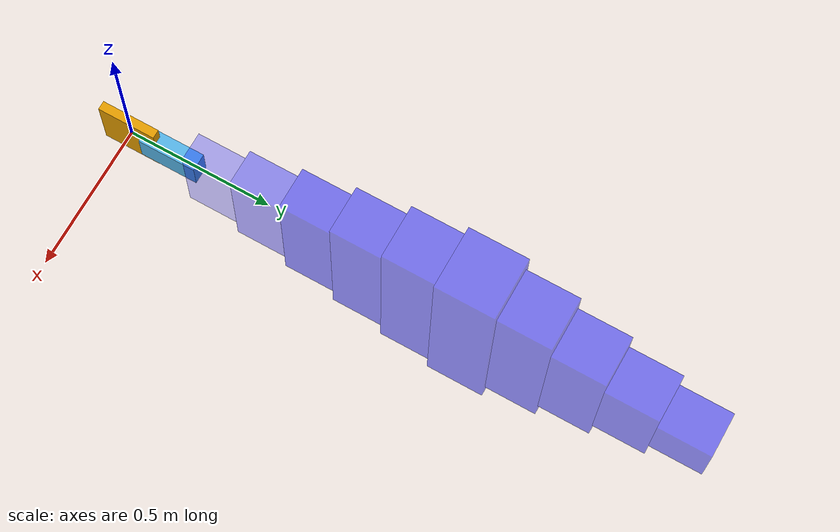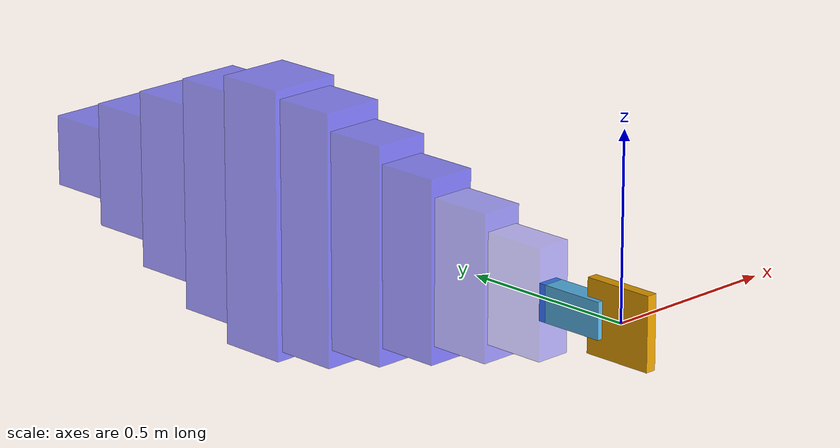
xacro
<robot name="my_robot">

  <!-- the model -->
  <link name="tail">
    <inertial>
      <mass value="0.01" />
      <origin xyz="0 0 0." />
      <inertia ixx="50.0" ixy="0.0" ixz="0.0"
        iyy="50.0" iyz="0.0"
        izz="50.0" />
    </inertial>
    <visual>
      <origin rpy="0 0 0" xyz="0 0 0."/>
      <geometry>
        <box size="0.03 0.2 0.2" />
      </geometry>
    </visual>
    <collision>
      <origin rpy="0 0 0" xyz="0 0 0"/>
      <geometry>
        <box size="0.03 0.2 0.2" />
      </geometry>
    </collision>
  </link>

  <joint name="joint0" type="revolute">
    <axis xyz="0 0 1"/>
    <limit effort="1000.0" lower="-.5" upper=".5" velocity="0.5"/>
    <origin rpy="0 0 0" xyz="0 0.05 0"/>
    <parent link="tail"/>
    <child link="arm_link0"/>
  </joint>

  <link name="arm_link0">
    <inertial>
      <mass value="0.01" />
      <origin xyz="0 0 0." />
      <inertia ixx="50.0" ixy="0.0" ixz="0.0"
        iyy="50.0" iyz="0.0"
        izz="50.0" />
    </inertial>
    <visual>
      <origin rpy="0 0 0" xyz="0 0.1 0"/>
      <geometry>
        <box size="0.06 0.2 0.1" />
      </geometry>
    </visual>
    <collision>
      <origin rpy="0 0 0" xyz="0 0.1 0"/>
      <geometry>
        <box size="0.06 0.2 0.1" />
      </geometry>
    </collision>
  </link>

  <joint name="joint1" type="revolute">
    <axis xyz="0 0 1"/>
    <limit effort="1000.0" lower="-.5" upper=".5" velocity="0.5"/>
    <origin rpy="0 0 0" xyz="0 0.18 0"/>
    <parent link="arm_link0"/>
    <child link="arm_link1"/>
  </joint>

  <link name="arm_link1">
    <inertial>
        <origin rpy="0 0 0" xyz="0 0.1 0"/>
        <mass value="0.1"/>
        <inertia ixx="1.67E-03" ixy="0" ixz="0" iyy="0.02166" iyz="0" izz="0.02166"/>
    </inertial>
    <visual>
        <origin rpy="0 0 0" xyz="0 0.1 0"/>
        <geometry>
          <box size="0.1 0.2 0.3" />
        </geometry>
        <material name="">
            <color rgba="0 0 1 0.3"/>
        </material>
    </visual>
    <collision>
        <origin rpy="0 0 0" xyz="0 0.1 0"/>
        <geometry>
            <box size=".1 0.2 0.3" />
        </geometry>
    </collision>
  </link>

  <joint name="joint2" type="revolute">
    <axis xyz="0 0 1"/>
    <limit effort="1000.0" lower="-.5" upper=".5" velocity="0.5"/>
    <origin rpy="0 0 0" xyz="0 0.18 0"/>
    <parent link="arm_link1"/>
    <child link="arm_link2"/>
  </joint>

  <link name="arm_link2">
    <inertial>
        <origin rpy="0 0 0" xyz="0 0.1 0"/>
        <mass value="0.1"/>
        <inertia ixx="1.67E-03" ixy="0" ixz="0" iyy="0.02166" iyz="0" izz="0.02166"/>
    </inertial>
    <visual>
        <origin rpy="0 0 0" xyz="0 0.1 0"/>
        <geometry>
          <box size="0.12 0.2 0.4" />
        </geometry>
        <material name="">
            <color rgba="0 0 1 0.4"/>
        </material>
    </visual>
    <collision>
        <origin rpy="0 0 0" xyz="0 0.1 0"/>
        <geometry>
            <box size="0.12 0.2 0.4" />
        </geometry>
    </collision>
  </link>

  <joint name="joint3" type="revolute">
    <axis xyz="0 0 1"/>
    <limit effort="1000.0" lower="-.5" upper=".5" velocity="0.5"/>
    <origin rpy="0 0 0" xyz="0 0.18 0"/>
    <parent link="arm_link2"/>
    <child link="arm_link3"/>
  </joint>

  <link name="arm_link3">
    <inertial>
        <origin rpy="0 0 0" xyz="0 0.1 0"/>
        <mass value="0.1"/>
        <inertia ixx="1.67E-03" ixy="0" ixz="0" iyy="0.02166" iyz="0" izz="0.02166"/>
    </inertial>
    <visual>
        <origin rpy="0 0 0" xyz="0 0.1 0"/>
        <geometry>
          <box size="0.14 0.2 0.5" />
        </geometry>
        <material name="">
            <color rgba="0 0 1 0.5"/>
        </material>
    </visual>
    <collision>
        <origin rpy="0 0 0" xyz="0 0.1 0"/>
        <geometry>
            <box size="0.14 0.2 0.5" />
        </geometry>
    </collision>
  </link>

  <joint name="joint4" type="revolute">
    <axis xyz="0 0 1"/>
    <limit effort="1000.0" lower="-.5" upper=".5" velocity="0.5"/>
    <origin rpy="0 0 0" xyz="0 0.18 0"/>
    <parent link="arm_link3"/>
    <child link="arm_link4"/>
  </joint>

  <link name="arm_link4">
    <inertial>
        <origin rpy="0 0 0" xyz="0 0.1 0"/>
        <mass value="0.1"/>
        <inertia ixx="1.67E-03" ixy="0" ixz="0" iyy="0.02166" iyz="0" izz="0.02166"/>
    </inertial>
    <visual>
        <origin rpy="0 0 0" xyz="0 0.1 0"/>
        <geometry>
          <box size="0.16 0.2 0.6" />
        </geometry>
        <material name="">
            <color rgba="0 0 1 0.5"/>
        </material>
    </visual>
    <collision>
        <origin rpy="0 0 0" xyz="0 0.1 0"/>
        <geometry>
            <box size="0.16 0.2 0.6" />
        </geometry>
    </collision>
  </link>

  <joint name="joint5" type="revolute">
    <axis xyz="0 0 1"/>
    <limit effort="1000.0" lower="-.5" upper=".5" velocity="0.5"/>
    <origin rpy="0 0 0" xyz="0 0.18 0"/>
    <parent link="arm_link4"/>
    <child link="arm_link5"/>
  </joint>

  <link name="arm_link5">
    <inertial>
        <origin rpy="0 0 0" xyz="0 0.1 0"/>
        <mass value="0.1"/>
        <inertia ixx="1.67E-03" ixy="0" ixz="0" iyy="0.02166" iyz="0" izz="0.02166"/>
    </inertial>
    <visual>
        <origin rpy="0 0 0" xyz="0 0.1 0"/>
        <geometry>
          <box size="0.18 0.2 0.7" />
        </geometry>
        <material name="">
            <color rgba="0 0 1 0.5"/>
        </material>
    </visual>
    <collision>
        <origin rpy="0 0 0" xyz="0 0.1 0"/>
        <geometry>
            <box size="0.18 0.2 0.7" />
        </geometry>
    </collision>
  </link>

  <joint name="joint6" type="revolute">
    <axis xyz="0 0 1"/>
    <limit effort="1000.0" lower="-.5" upper=".5" velocity="0.5"/>
    <origin rpy="0 0 0" xyz="0 0.18 0"/>
    <parent link="arm_link5"/>
    <child link="arm_link6"/>
  </joint>

  <link name="arm_link6">
    <inertial>
        <origin rpy="0 0 0" xyz="0 0.1 0"/>
        <mass value="0.1"/>
        <inertia ixx="1.67E-03" ixy="0" ixz="0" iyy="0.02166" iyz="0" izz="0.02166"/>
    </inertial>
    <visual>
        <origin rpy="0 0 0" xyz="0 0.1 0"/>
        <geometry>
          <box size="0.21 0.2 0.75" />
        </geometry>
        <material name="">
            <color rgba="0 0 1 0.5"/>
        </material>
    </visual>
    <collision>
        <origin rpy="0 0 0" xyz="0 0.1 0"/>
        <geometry>
            <box size="0.21 0.2 0.75" />
        </geometry>
    </collision>
  </link>

  <joint name="joint7" type="revolute">
    <axis xyz="0 0 1"/>
    <limit effort="1000.0" lower="-.5" upper=".5" velocity="0.5"/>
    <origin rpy="0 0 0" xyz="0 0.18 0"/>
    <parent link="arm_link6"/>
    <child link="arm_link7"/>
  </joint>

  <link name="arm_link7">
    <inertial>
        <origin rpy="0 0 0" xyz="0 0.1 0"/>
        <mass value="0.1"/>
        <inertia ixx="1.67E-03" ixy="0" ixz="0" iyy="0.02166" iyz="0" izz="0.02166"/>
    </inertial>
    <visual>
        <origin rpy="0 0 0" xyz="0 0.1 0"/>
        <geometry>
          <box size="0.18 0.2 0.65" />
        </geometry>
        <material name="">
            <color rgba="0 0 1 0.5"/>
        </material>
    </visual>
    <collision>
        <origin rpy="0 0 0" xyz="0 0.1 0"/>
        <geometry>
            <box size="0.18 0.2 0.65" />
        </geometry>
    </collision>
  </link>

  <joint name="joint8" type="revolute">
    <axis xyz="0 0 1"/>
    <limit effort="1000.0" lower="-.5" upper=".5" velocity="0.5"/>
    <origin rpy="0 0 0" xyz="0 0.18 0"/>
    <parent link="arm_link7"/>
    <child link="arm_link8"/>
  </joint>

  <link name="arm_link8">
    <inertial>
        <origin rpy="0 0 0" xyz="0 0.1 0"/>
        <mass value="0.1"/>
        <inertia ixx="1.67E-03" ixy="0" ixz="0" iyy="0.02166" iyz="0" izz="0.02166"/>
    </inertial>
    <visual>
        <origin rpy="0 0 0" xyz="0 0.1 0"/>
        <geometry>
          <box size="0.17 0.2 0.5" />
        </geometry>
        <material name="">
            <color rgba="0 0 1 0.5"/>
        </material>
    </visual>
    <collision>
        <origin rpy="0 0 0" xyz="0 0.1 0"/>
        <geometry>
            <box size="0.17 0.2 0.5" />
        </geometry>
    </collision>
  </link>

  <joint name="joint9" type="revolute">
    <axis xyz="0 0 1"/>
    <limit effort="1000.0" lower="-.5" upper=".5" velocity="0.5"/>
    <origin rpy="0 0 0" xyz="0 0.18 0"/>
    <parent link="arm_link8"/>
    <child link="arm_link9"/>
  </joint>

  <link name="arm_link9">
    <inertial>
        <origin rpy="0 0 0" xyz="0 0.1 0"/>
        <mass value="0.1"/>
        <inertia ixx="1.67E-03" ixy="0" ixz="0" iyy="0.02166" iyz="0" izz="0.02166"/>
    </inertial>
    <visual>
        <origin rpy="0 0 0" xyz="0 0.1 0"/>
        <geometry>
          <box size="0.16 0.2 0.35" />
        </geometry>
        <material name="">
            <color rgba="0 0 1 0.5"/>
        </material>
    </visual>
    <collision>
        <origin rpy="0 0 0" xyz="0 0.1 0"/>
        <geometry>
            <box size="0.16 0.2 0.35" />
        </geometry>
    </collision>
  </link>

  <joint name="joint10" type="revolute">
    <axis xyz="0 0 1"/>
    <limit effort="1000.0" lower="-.5" upper=".5" velocity="0.5"/>
    <origin rpy="0 0 0" xyz="0 0.18 0"/>
    <parent link="arm_link9"/>
    <child link="arm_link10"/>
  </joint>

  <link name="arm_link10">
    <inertial>
        <origin rpy="0 0 0" xyz="0 0.1 0"/>
        <mass value="0.1"/>
        <inertia ixx="1.67E-03" ixy="0" ixz="0" iyy="0.02166" iyz="0" izz="0.02166"/>
    </inertial>
    <visual>
        <origin rpy="0 0 0" xyz="0 0.1 0"/>
        <geometry>
          <box size="0.15 0.2 0.2" />
        </geometry>
        <material name="">
            <color rgba="0 0 1 0.5"/>
        </material>
    </visual>
    <collision>
        <origin rpy="0 0 0" xyz="0 0.1 0"/>
        <geometry>
            <box size="0.15 0.2 0.2" />
        </geometry>
    </collision>
  </link>

  <!-- ROS Control plugin for Gazebo -->
  <gazebo>
    <plugin name="gazebo_ros_control" filename="libgazebo_ros_control.so">
      <robotNamespace>/my_robot</robotNamespace>
      <legacyModeNS>false</legacyModeNS>
    </plugin>
    <plugin name="object_controller" filename="libgazebo_ros_planar_move.so">
      <commandTopic>cmd_vel</commandTopic>
      <odometryTopic>odom</odometryTopic>
      <odometryFrame>odom</odometryFrame>
      <odometryRate>20.0</odometryRate>
      <robotBaseFrame>base_footprint</robotBaseFrame>
    </plugin>
  </gazebo>

  <!-- transmission -->
  <transmission name="trans_joint1">
      <type>transmission_interface/SimpleTransmission</type>
      <joint name="joint1">
          <hardwareInterface>hardware_interface/PositionJointInterface</hardwareInterface>
      </joint>
      <actuator name="joint1_motor">
          <hardwareInterface>hardware_interface/PositionJointInterface</hardwareInterface>
          <mechanicalReduction>1</mechanicalReduction>
      </actuator>
  </transmission>
  <transmission name="trans_joint2">
      <type>transmission_interface/SimpleTransmission</type>
      <joint name="joint2">
          <hardwareInterface>hardware_interface/PositionJointInterface</hardwareInterface>
      </joint>
      <actuator name="joint2_motor">
          <hardwareInterface>hardware_interface/PositionJointInterface</hardwareInterface>
          <mechanicalReduction>1</mechanicalReduction>
      </actuator>
  </transmission>

</robot>
